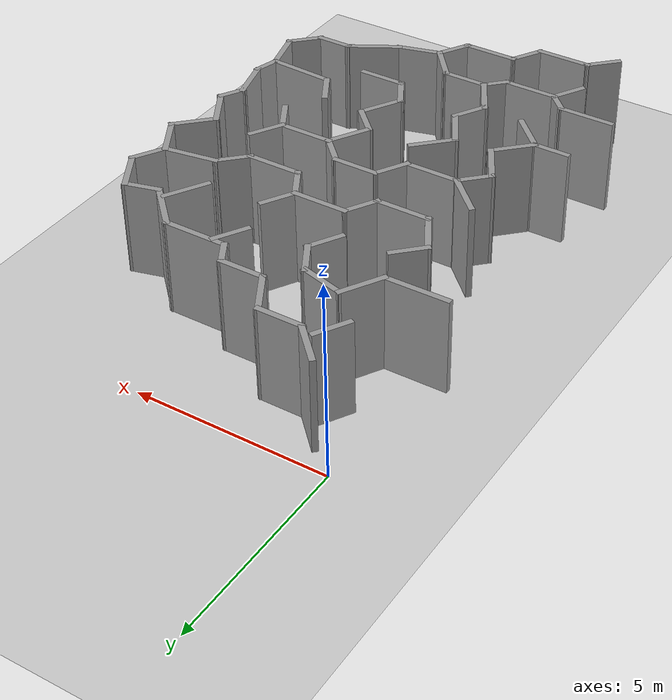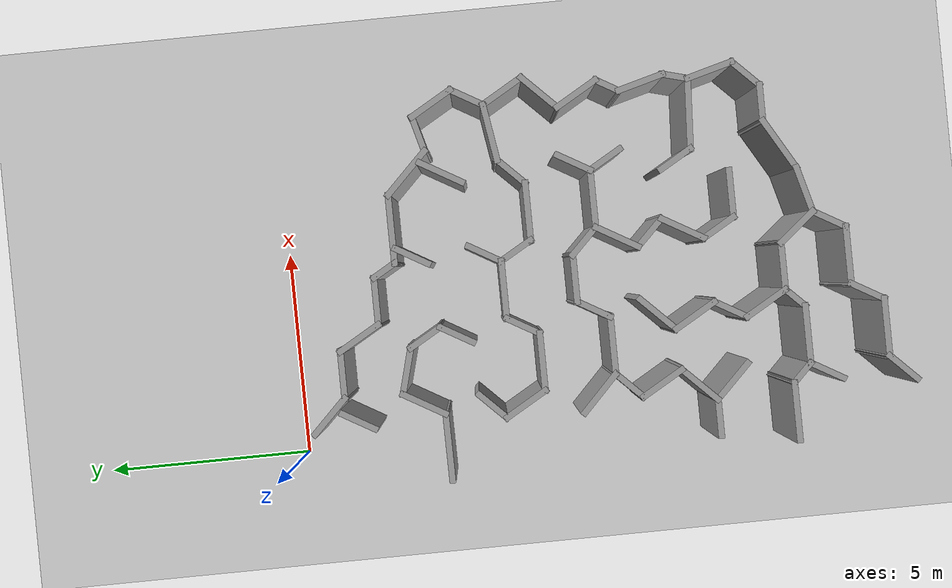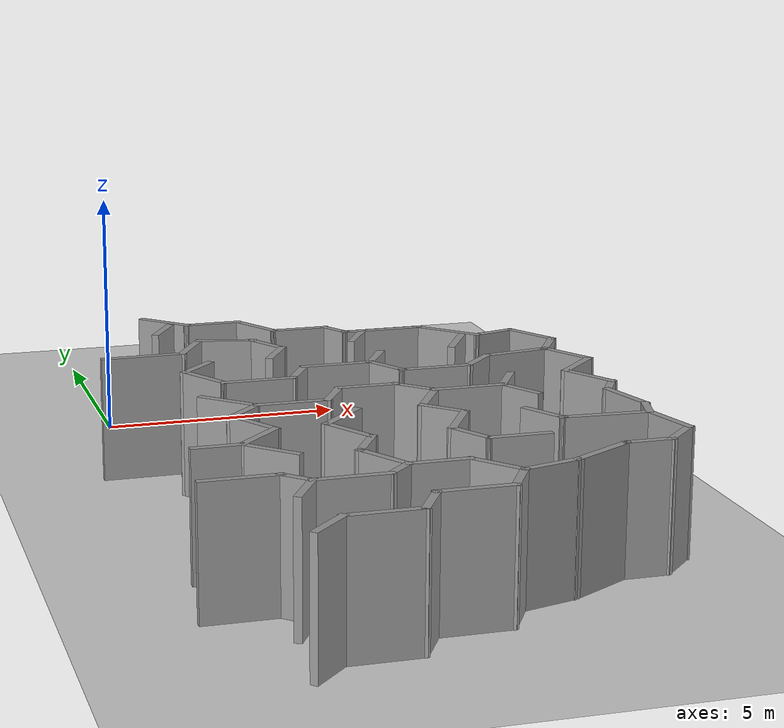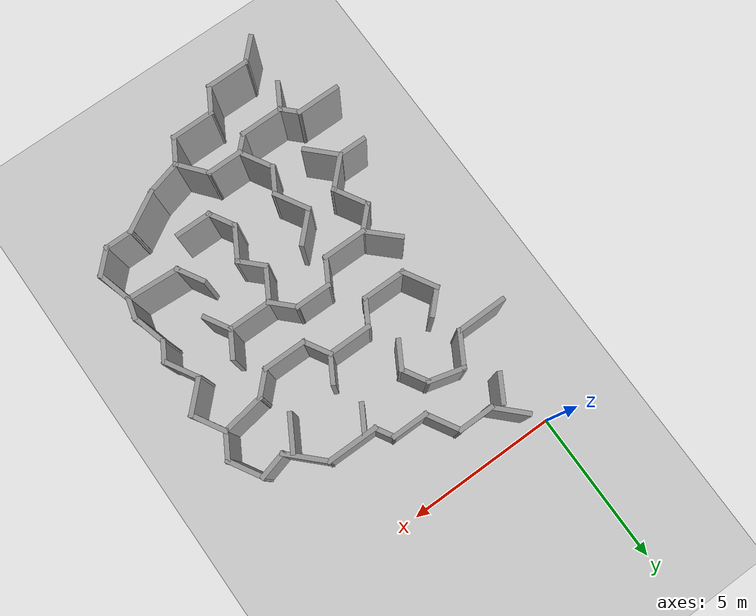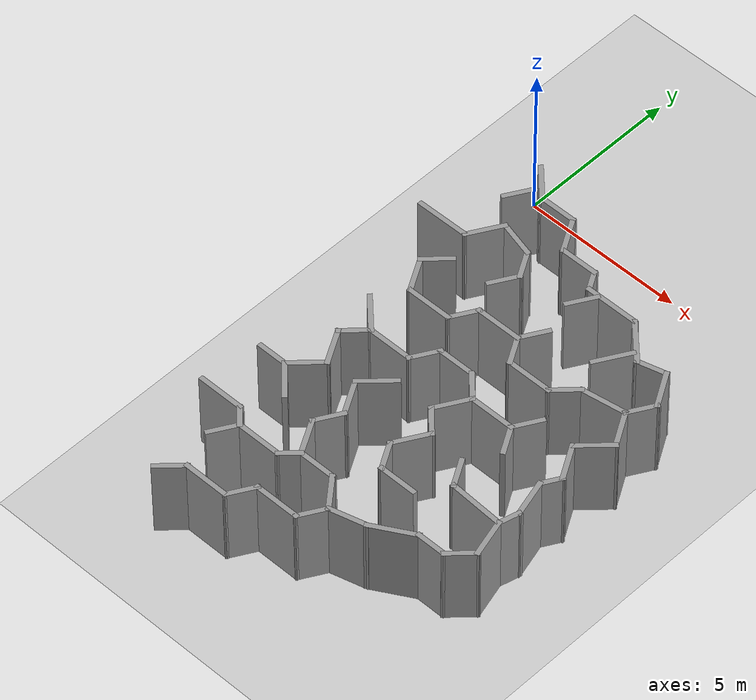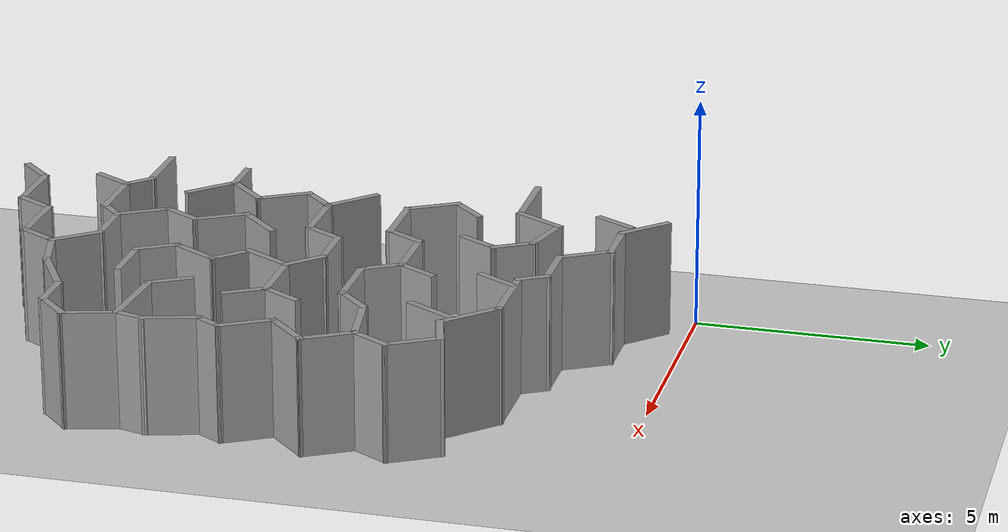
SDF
<sdf version="1.7">
 <world name="default">
  <model name="ground_plane">
   <static>1</static>
   <link name="link">
    <collision name="collision">
     <geometry><plane><normal>0 0 1</normal><size>100 100</size></plane></geometry>
     <surface><friction><ode><mu>100</mu><mu2>50</mu2></ode></friction></surface>
    </collision>
    <visual name="visual">
     <cast_shadows>0</cast_shadows>
     <geometry><plane><normal>0 0 1</normal><size>100 100</size></plane></geometry>
     <material>
      <script><uri>file://media/materials/scripts/gazebo.material</uri><name>Gazebo/Grey</name></script>
     </material>
    </visual>
   </link>
  </model>
  <model name="Maze">
   <pose>0.084887 -7.59379 0 0 -0 0</pose>
   <link name="Wall_110">
    <collision name="Wall_110_Collision">
     <geometry><box><size>1.5 0.15 2.5</size></box></geometry>
     <pose>0 0 1.25 0 -0 0</pose>
    </collision>
    <visual name="Wall_110_Visual">
     <pose>0 0 1.25 0 -0 0</pose>
     <geometry><box><size>1.5 0.15 2.5</size></box></geometry>
     <material>
      <script><uri>file://media/materials/scripts/gazebo.material</uri><name>Gazebo/Grey</name></script>
      <ambient>1 1 1 1</ambient>
     </material>
     <meta><layer>0</layer></meta>
    </visual>
    <pose>0.05253 -4.26643 0 0 -0 0</pose>
   </link>
   <link name="Wall_111">
    <collision name="Wall_111_Collision">
     <geometry><box><size>0.75 0.15 2.5</size></box></geometry>
     <pose>0 0 1.25 0 -0 0</pose>
    </collision>
    <visual name="Wall_111_Visual">
     <pose>0 0 1.25 0 -0 0</pose>
     <geometry><box><size>0.75 0.15 2.5</size></box></geometry>
     <material>
      <script><uri>file://media/materials/scripts/gazebo.material</uri><name>Gazebo/Grey</name></script>
      <ambient>1 1 1 1</ambient>
     </material>
     <meta><layer>0</layer></meta>
    </visual>
    <pose>0.939662 -4.47856 0 0 -0 -0.785398</pose>
   </link>
   <link name="Wall_112">
    <collision name="Wall_112_Collision">
     <geometry><box><size>1 0.15 2.5</size></box></geometry>
     <pose>0 0 1.25 0 -0 0</pose>
    </collision>
    <visual name="Wall_112_Visual">
     <pose>0 0 1.25 0 -0 0</pose>
     <geometry><box><size>1 0.15 2.5</size></box></geometry>
     <material>
      <script><uri>file://media/materials/scripts/gazebo.material</uri><name>Gazebo/Grey</name></script>
      <ambient>1 1 1 1</ambient>
     </material>
     <meta><layer>0</layer></meta>
    </visual>
    <pose>0.939294 -5.05876 0 0 -0 -2.0944</pose>
   </link>
   <link name="Wall_114">
    <collision name="Wall_114_Collision">
     <geometry><box><size>1.5 0.15 2.5</size></box></geometry>
     <pose>0 0 1.25 0 -0 0</pose>
    </collision>
    <visual name="Wall_114_Visual">
     <pose>0 0 1.25 0 -0 0</pose>
     <geometry><box><size>1.5 0.15 2.5</size></box></geometry>
     <material>
      <script><uri>file://media/materials/scripts/gazebo.material</uri><name>Gazebo/Grey</name></script>
      <ambient>1 1 1 1</ambient>
     </material>
     <meta><layer>0</layer></meta>
    </visual>
    <pose>1.82679 -4.69069 0 0 -0 0</pose>
   </link>
   <link name="Wall_115">
    <collision name="Wall_115_Collision">
     <geometry><box><size>0.75 0.15 2.5</size></box></geometry>
     <pose>0 0 1.25 0 -0 0</pose>
    </collision>
    <visual name="Wall_115_Visual">
     <pose>0 0 1.25 0 -0 0</pose>
     <geometry><box><size>0.75 0.15 2.5</size></box></geometry>
     <material>
      <script><uri>file://media/materials/scripts/gazebo.material</uri><name>Gazebo/Grey</name></script>
      <ambient>1 1 1 1</ambient>
     </material>
     <meta><layer>0</layer></meta>
    </visual>
    <pose>2.71393 -4.47856 0 0 -0 0.785398</pose>
   </link>
   <link name="Wall_116">
    <collision name="Wall_116_Collision">
     <geometry><box><size>1.25 0.15 2.5</size></box></geometry>
     <pose>0 0 1.25 0 -0 0</pose>
    </collision>
    <visual name="Wall_116_Visual">
     <pose>0 0 1.25 0 -0 0</pose>
     <geometry><box><size>1.25 0.15 2.5</size></box></geometry>
     <material>
      <script><uri>file://media/materials/scripts/gazebo.material</uri><name>Gazebo/Grey</name></script>
      <ambient>1 1 1 1</ambient>
     </material>
     <meta><layer>0</layer></meta>
    </visual>
    <pose>2.65106 -3.79012 0 0 -0 2.0944</pose>
   </link>
   <link name="Wall_117">
    <collision name="Wall_117_Collision">
     <geometry><box><size>1 0.15 2.5</size></box></geometry>
     <pose>0 0 1.25 0 -0 0</pose>
    </collision>
    <visual name="Wall_117_Visual">
     <pose>0 0 1.25 0 -0 0</pose>
     <geometry><box><size>1 0.15 2.5</size></box></geometry>
     <material>
      <script><uri>file://media/materials/scripts/gazebo.material</uri><name>Gazebo/Grey</name></script>
      <ambient>1 1 1 1</ambient>
     </material>
     <meta><layer>0</layer></meta>
    </visual>
    <pose>2.58856 -2.94574 0 0 -0 1.0472</pose>
   </link>
   <link name="Wall_118">
    <collision name="Wall_118_Collision">
     <geometry><box><size>1.25 0.15 2.5</size></box></geometry>
     <pose>0 0 1.25 0 -0 0</pose>
    </collision>
    <visual name="Wall_118_Visual">
     <pose>0 0 1.25 0 -0 0</pose>
     <geometry><box><size>1.25 0.15 2.5</size></box></geometry>
     <material>
      <script><uri>file://media/materials/scripts/gazebo.material</uri><name>Gazebo/Grey</name></script>
      <ambient>1 1 1 1</ambient>
     </material>
     <meta><layer>0</layer></meta>
    </visual>
    <pose>2.52606 -2.10137 0 0 -0 2.0944</pose>
   </link>
   <link name="Wall_119">
    <collision name="Wall_119_Collision">
     <geometry><box><size>1.25 0.15 2.5</size></box></geometry>
     <pose>0 0 1.25 0 -0 0</pose>
    </collision>
    <visual name="Wall_119_Visual">
     <pose>0 0 1.25 0 -0 0</pose>
     <geometry><box><size>1.25 0.15 2.5</size></box></geometry>
     <material>
      <script><uri>file://media/materials/scripts/gazebo.material</uri><name>Gazebo/Grey</name></script>
      <ambient>1 1 1 1</ambient>
     </material>
     <meta><layer>0</layer></meta>
    </visual>
    <pose>2.63997 -1.23615 0 0 -0 0.785398</pose>
   </link>
   <link name="Wall_121">
    <collision name="Wall_121_Collision">
     <geometry><box><size>1.25 0.15 2.5</size></box></geometry>
     <pose>0 0 1.25 0 -0 0</pose>
    </collision>
    <visual name="Wall_121_Visual">
     <pose>0 0 1.25 0 -0 0</pose>
     <geometry><box><size>1.25 0.15 2.5</size></box></geometry>
     <material>
      <script><uri>file://media/materials/scripts/gazebo.material</uri><name>Gazebo/Grey</name></script>
      <ambient>1 1 1 1</ambient>
     </material>
     <meta><layer>0</layer></meta>
    </visual>
    <pose>3.47606 -4.26643 0 0 -0 0</pose>
   </link>
   <link name="Wall_122">
    <collision name="Wall_122_Collision">
     <geometry><box><size>1.2022 0.15 2.5</size></box></geometry>
     <pose>0 0 1.25 0 -0 0</pose>
    </collision>
    <visual name="Wall_122_Visual">
     <pose>0 0 1.25 0 -0 0</pose>
     <geometry><box><size>1.2022 0.15 2.5</size></box></geometry>
     <material>
      <script><uri>file://media/materials/scripts/gazebo.material</uri><name>Gazebo/Grey</name></script>
      <ambient>1 1 1 1</ambient>
     </material>
     <meta><layer>0</layer></meta>
    </visual>
    <pose>4.3589 -4.67385 0 0 -0 -0.885802</pose>
   </link>
   <link name="Wall_124">
    <collision name="Wall_124_Collision">
     <geometry><box><size>1 0.15 2.5</size></box></geometry>
     <pose>0 0 1.25 0 -0 0</pose>
    </collision>
    <visual name="Wall_124_Visual">
     <pose>0 0 1.25 0 -0 0</pose>
     <geometry><box><size>1 0.15 2.5</size></box></geometry>
     <material>
      <script><uri>file://media/materials/scripts/gazebo.material</uri><name>Gazebo/Grey</name></script>
      <ambient>1 1 1 1</ambient>
     </material>
     <meta><layer>0</layer></meta>
    </visual>
    <pose>0.864304 2.83096 0 0 -0 -2.35619</pose>
   </link>
   <link name="Wall_125">
    <collision name="Wall_125_Collision">
     <geometry><box><size>1.25 0.15 2.5</size></box></geometry>
     <pose>0 0 1.25 0 -0 0</pose>
    </collision>
    <visual name="Wall_125_Visual">
     <pose>0 0 1.25 0 -0 0</pose>
     <geometry><box><size>1.25 0.15 2.5</size></box></geometry>
     <material>
      <script><uri>file://media/materials/scripts/gazebo.material</uri><name>Gazebo/Grey</name></script>
      <ambient>1 1 1 1</ambient>
     </material>
     <meta><layer>0</layer></meta>
    </visual>
    <pose>0.838784 2.05413 0 0 -0 -1.0472</pose>
   </link>
   <link name="Wall_126">
    <collision name="Wall_126_Collision">
     <geometry><box><size>1.5 0.15 2.5</size></box></geometry>
     <pose>0 0 1.25 0 -0 0</pose>
    </collision>
    <visual name="Wall_126_Visual">
     <pose>0 0 1.25 0 -0 0</pose>
     <geometry><box><size>1.5 0.15 2.5</size></box></geometry>
     <material>
      <script><uri>file://media/materials/scripts/gazebo.material</uri><name>Gazebo/Grey</name></script>
      <ambient>1 1 1 1</ambient>
     </material>
     <meta><layer>0</layer></meta>
    </visual>
    <pose>1.78878 1.57782 0 0 -0 0</pose>
   </link>
   <link name="Wall_127">
    <collision name="Wall_127_Collision">
     <geometry><box><size>1 0.15 2.5</size></box></geometry>
     <pose>0 0 1.25 0 -0 0</pose>
    </collision>
    <visual name="Wall_127_Visual">
     <pose>0 0 1.25 0 -0 0</pose>
     <geometry><box><size>1 0.15 2.5</size></box></geometry>
     <material>
      <script><uri>file://media/materials/scripts/gazebo.material</uri><name>Gazebo/Grey</name></script>
      <ambient>1 1 1 1</ambient>
     </material>
     <meta><layer>0</layer></meta>
    </visual>
    <pose>2.67628 1.94588 0 0 -0 1.0472</pose>
   </link>
   <link name="Wall_128">
    <collision name="Wall_128_Collision">
     <geometry><box><size>1.5 0.15 2.5</size></box></geometry>
     <pose>0 0 1.25 0 -0 0</pose>
    </collision>
    <visual name="Wall_128_Visual">
     <pose>0 0 1.25 0 -0 0</pose>
     <geometry><box><size>1.5 0.15 2.5</size></box></geometry>
     <material>
      <script><uri>file://media/materials/scripts/gazebo.material</uri><name>Gazebo/Grey</name></script>
      <ambient>1 1 1 1</ambient>
     </material>
     <meta><layer>0</layer></meta>
    </visual>
    <pose>3.56378 2.31394 0 0 -0 0</pose>
   </link>
   <link name="Wall_129">
    <collision name="Wall_129_Collision">
     <geometry><box><size>1 0.15 2.5</size></box></geometry>
     <pose>0 0 1.25 0 -0 0</pose>
    </collision>
    <visual name="Wall_129_Visual">
     <pose>0 0 1.25 0 -0 0</pose>
     <geometry><box><size>1 0.15 2.5</size></box></geometry>
     <material>
      <script><uri>file://media/materials/scripts/gazebo.material</uri><name>Gazebo/Grey</name></script>
      <ambient>1 1 1 1</ambient>
     </material>
     <meta><layer>0</layer></meta>
    </visual>
    <pose>4.45128 2.682 0 0 -0 1.0472</pose>
   </link>
   <link name="Wall_131">
    <collision name="Wall_131_Collision">
     <geometry><box><size>1 0.15 2.5</size></box></geometry>
     <pose>0 0 1.25 0 -0 0</pose>
    </collision>
    <visual name="Wall_131_Visual">
     <pose>0 0 1.25 0 -0 0</pose>
     <geometry><box><size>1 0.15 2.5</size></box></geometry>
     <material>
      <script><uri>file://media/materials/scripts/gazebo.material</uri><name>Gazebo/Grey</name></script>
      <ambient>1 1 1 1</ambient>
     </material>
     <meta><layer>0</layer></meta>
    </visual>
    <pose>4.45128 1.94588 0 0 -0 -1.0472</pose>
   </link>
   <link name="Wall_132">
    <collision name="Wall_132_Collision">
     <geometry><box><size>1.5 0.15 2.5</size></box></geometry>
     <pose>0 0 1.25 0 -0 0</pose>
    </collision>
    <visual name="Wall_132_Visual">
     <pose>0 0 1.25 0 -0 0</pose>
     <geometry><box><size>1.5 0.15 2.5</size></box></geometry>
     <material>
      <script><uri>file://media/materials/scripts/gazebo.material</uri><name>Gazebo/Grey</name></script>
      <ambient>1 1 1 1</ambient>
     </material>
     <meta><layer>0</layer></meta>
    </visual>
    <pose>5.33878 1.57782 0 0 -0 0</pose>
   </link>
   <link name="Wall_133">
    <collision name="Wall_133_Collision">
     <geometry><box><size>1 0.15 2.5</size></box></geometry>
     <pose>0 0 1.25 0 -0 0</pose>
    </collision>
    <visual name="Wall_133_Visual">
     <pose>0 0 1.25 0 -0 0</pose>
     <geometry><box><size>1 0.15 2.5</size></box></geometry>
     <material>
      <script><uri>file://media/materials/scripts/gazebo.material</uri><name>Gazebo/Grey</name></script>
      <ambient>1 1 1 1</ambient>
     </material>
     <meta><layer>0</layer></meta>
    </visual>
    <pose>6.3143 1.87834 0 0 -0 0.785398</pose>
   </link>
   <link name="Wall_134">
    <collision name="Wall_134_Collision">
     <geometry><box><size>1.48955 0.15 2.5</size></box></geometry>
     <pose>0 0 1.25 0 -0 0</pose>
    </collision>
    <visual name="Wall_134_Visual">
     <pose>0 0 1.25 0 -0 0</pose>
     <geometry><box><size>1.48955 0.15 2.5</size></box></geometry>
     <material>
      <script><uri>file://media/materials/scripts/gazebo.material</uri><name>Gazebo/Grey</name></script>
      <ambient>1 1 1 1</ambient>
     </material>
     <meta><layer>0</layer></meta>
    </visual>
    <pose>7.27649 2.2828 0 0 -0 0.155823</pose>
   </link>
   <link name="Wall_136">
    <collision name="Wall_136_Collision">
     <geometry><box><size>1 0.15 2.5</size></box></geometry>
     <pose>0 0 1.25 0 -0 0</pose>
    </collision>
    <visual name="Wall_136_Visual">
     <pose>0 0 1.25 0 -0 0</pose>
     <geometry><box><size>1 0.15 2.5</size></box></geometry>
     <material>
      <script><uri>file://media/materials/scripts/gazebo.material</uri><name>Gazebo/Grey</name></script>
      <ambient>1 1 1 1</ambient>
     </material>
     <meta><layer>0</layer></meta>
    </visual>
    <pose>6.38032 0.394424 0 0 -0 -2.0944</pose>
   </link>
   <link name="Wall_137">
    <collision name="Wall_137_Collision">
     <geometry><box><size>1 0.15 2.5</size></box></geometry>
     <pose>0 0 1.25 0 -0 0</pose>
    </collision>
    <visual name="Wall_137_Visual">
     <pose>0 0 1.25 0 -0 0</pose>
     <geometry><box><size>1 0.15 2.5</size></box></geometry>
     <material>
      <script><uri>file://media/materials/scripts/gazebo.material</uri><name>Gazebo/Grey</name></script>
      <ambient>1 1 1 1</ambient>
     </material>
     <meta><layer>0</layer></meta>
    </visual>
    <pose>6.38032 -0.341698 0 0 -0 -1.0472</pose>
   </link>
   <link name="Wall_139">
    <collision name="Wall_139_Collision">
     <geometry><box><size>1.5 0.15 2.5</size></box></geometry>
     <pose>0 0 1.25 0 -0 0</pose>
    </collision>
    <visual name="Wall_139_Visual">
     <pose>0 0 1.25 0 -0 0</pose>
     <geometry><box><size>1.5 0.15 2.5</size></box></geometry>
     <material>
      <script><uri>file://media/materials/scripts/gazebo.material</uri><name>Gazebo/Grey</name></script>
      <ambient>1 1 1 1</ambient>
     </material>
     <meta><layer>0</layer></meta>
    </visual>
    <pose>5.49282 0.026363 0 0 -0 3.14159</pose>
   </link>
   <link name="Wall_140">
    <collision name="Wall_140_Collision">
     <geometry><box><size>1 0.15 2.5</size></box></geometry>
     <pose>0 0 1.25 0 -0 0</pose>
    </collision>
    <visual name="Wall_140_Visual">
     <pose>0 0 1.25 0 -0 0</pose>
     <geometry><box><size>1 0.15 2.5</size></box></geometry>
     <material>
      <script><uri>file://media/materials/scripts/gazebo.material</uri><name>Gazebo/Grey</name></script>
      <ambient>1 1 1 1</ambient>
     </material>
     <meta><layer>0</layer></meta>
    </visual>
    <pose>4.5173 0.326883 0 0 -0 2.35619</pose>
   </link>
   <link name="Wall_141">
    <collision name="Wall_141_Collision">
     <geometry><box><size>1.25 0.15 2.5</size></box></geometry>
     <pose>0 0 1.25 0 -0 0</pose>
    </collision>
    <visual name="Wall_141_Visual">
     <pose>0 0 1.25 0 -0 0</pose>
     <geometry><box><size>1.25 0.15 2.5</size></box></geometry>
     <material>
      <script><uri>file://media/materials/scripts/gazebo.material</uri><name>Gazebo/Grey</name></script>
      <ambient>1 1 1 1</ambient>
     </material>
     <meta><layer>0</layer></meta>
    </visual>
    <pose>3.66678 0.627404 0 0 -0 3.14159</pose>
   </link>
   <link name="Wall_142">
    <collision name="Wall_142_Collision">
     <geometry><box><size>1 0.15 2.5</size></box></geometry>
     <pose>0 0 1.25 0 -0 0</pose>
    </collision>
    <visual name="Wall_142_Visual">
     <pose>0 0 1.25 0 -0 0</pose>
     <geometry><box><size>1 0.15 2.5</size></box></geometry>
     <material>
      <script><uri>file://media/materials/scripts/gazebo.material</uri><name>Gazebo/Grey</name></script>
      <ambient>1 1 1 1</ambient>
     </material>
     <meta><layer>0</layer></meta>
    </visual>
    <pose>2.90428 0.259343 0 0 -0 -2.0944</pose>
   </link>
   <link name="Wall_143">
    <collision name="Wall_143_Collision">
     <geometry><box><size>1.5 0.15 2.5</size></box></geometry>
     <pose>0 0 1.25 0 -0 0</pose>
    </collision>
    <visual name="Wall_143_Visual">
     <pose>0 0 1.25 0 -0 0</pose>
     <geometry><box><size>1.5 0.15 2.5</size></box></geometry>
     <material>
      <script><uri>file://media/materials/scripts/gazebo.material</uri><name>Gazebo/Grey</name></script>
      <ambient>1 1 1 1</ambient>
     </material>
     <meta><layer>0</layer></meta>
    </visual>
    <pose>2.01678 -0.108718 0 0 -0 3.14159</pose>
   </link>
   <link name="Wall_144">
    <collision name="Wall_144_Collision">
     <geometry><box><size>1 0.15 2.5</size></box></geometry>
     <pose>0 0 1.25 0 -0 0</pose>
    </collision>
    <visual name="Wall_144_Visual">
     <pose>0 0 1.25 0 -0 0</pose>
     <geometry><box><size>1 0.15 2.5</size></box></geometry>
     <material>
      <script><uri>file://media/materials/scripts/gazebo.material</uri><name>Gazebo/Grey</name></script>
      <ambient>1 1 1 1</ambient>
     </material>
     <meta><layer>0</layer></meta>
    </visual>
    <pose>1.04126 -0.409238 0 0 -0 -2.35619</pose>
   </link>
   <link name="Wall_145">
    <collision name="Wall_145_Collision">
     <geometry><box><size>1.25 0.15 2.5</size></box></geometry>
     <pose>0 0 1.25 0 -0 0</pose>
    </collision>
    <visual name="Wall_145_Visual">
     <pose>0 0 1.25 0 -0 0</pose>
     <geometry><box><size>1.25 0.15 2.5</size></box></geometry>
     <material>
      <script><uri>file://media/materials/scripts/gazebo.material</uri><name>Gazebo/Grey</name></script>
      <ambient>1 1 1 1</ambient>
     </material>
     <meta><layer>0</layer></meta>
    </visual>
    <pose>1.01574 -1.18607 0 0 -0 -1.0472</pose>
   </link>
   <link name="Wall_146">
    <collision name="Wall_146_Collision">
     <geometry><box><size>1.25 0.15 2.5</size></box></geometry>
     <pose>0 0 1.25 0 -0 0</pose>
    </collision>
    <visual name="Wall_146_Visual">
     <pose>0 0 1.25 0 -0 0</pose>
     <geometry><box><size>1.25 0.15 2.5</size></box></geometry>
     <material>
      <script><uri>file://media/materials/scripts/gazebo.material</uri><name>Gazebo/Grey</name></script>
      <ambient>1 1 1 1</ambient>
     </material>
     <meta><layer>0</layer></meta>
    </visual>
    <pose>0.901834 -2.0513 0 0 -0 -2.35619</pose>
   </link>
   <link name="Wall_147">
    <collision name="Wall_147_Collision">
     <geometry><box><size>1.25 0.15 2.5</size></box></geometry>
     <pose>0 0 1.25 0 -0 0</pose>
    </collision>
    <visual name="Wall_147_Visual">
     <pose>0 0 1.25 0 -0 0</pose>
     <geometry><box><size>1.25 0.15 2.5</size></box></geometry>
     <material>
      <script><uri>file://media/materials/scripts/gazebo.material</uri><name>Gazebo/Grey</name></script>
      <ambient>1 1 1 1</ambient>
     </material>
     <meta><layer>0</layer></meta>
    </visual>
    <pose>0.901834 -2.82911 0 0 -0 -0.785398</pose>
   </link>
   <link name="Wall_149">
    <collision name="Wall_149_Collision">
     <geometry><box><size>1 0.15 2.5</size></box></geometry>
     <pose>0 0 1.25 0 -0 0</pose>
    </collision>
    <visual name="Wall_149_Visual">
     <pose>0 0 1.25 0 -0 0</pose>
     <geometry><box><size>1 0.15 2.5</size></box></geometry>
     <material>
      <script><uri>file://media/materials/scripts/gazebo.material</uri><name>Gazebo/Grey</name></script>
      <ambient>1 1 1 1</ambient>
     </material>
     <meta><layer>0</layer></meta>
    </visual>
    <pose>0.087925 -2.4402 0 0 -0 3.14159</pose>
   </link>
   <link name="Wall_159">
    <collision name="Wall_159_Collision">
     <geometry><box><size>1.25 0.15 2.5</size></box></geometry>
     <pose>0 0 1.25 0 -0 0</pose>
    </collision>
    <visual name="Wall_159_Visual">
     <pose>0 0 1.25 0 -0 0</pose>
     <geometry><box><size>1.25 0.15 2.5</size></box></geometry>
     <material>
      <script><uri>file://media/materials/scripts/gazebo.material</uri><name>Gazebo/Grey</name></script>
      <ambient>1 1 1 1</ambient>
     </material>
     <meta><layer>0</layer></meta>
    </visual>
    <pose>4.54282 -0.449951 0 0 -0 -2.0944</pose>
   </link>
   <link name="Wall_160">
    <collision name="Wall_160_Collision">
     <geometry><box><size>1 0.15 2.5</size></box></geometry>
     <pose>0 0 1.25 0 -0 0</pose>
    </collision>
    <visual name="Wall_160_Visual">
     <pose>0 0 1.25 0 -0 0</pose>
     <geometry><box><size>1 0.15 2.5</size></box></geometry>
     <material>
      <script><uri>file://media/materials/scripts/gazebo.material</uri><name>Gazebo/Grey</name></script>
      <ambient>1 1 1 1</ambient>
     </material>
     <meta><layer>0</layer></meta>
    </visual>
    <pose>4.56834 -1.22679 0 0 -0 -0.785398</pose>
   </link>
   <link name="Wall_161">
    <collision name="Wall_161_Collision">
     <geometry><box><size>1.25 0.15 2.5</size></box></geometry>
     <pose>0 0 1.25 0 -0 0</pose>
    </collision>
    <visual name="Wall_161_Visual">
     <pose>0 0 1.25 0 -0 0</pose>
     <geometry><box><size>1.25 0.15 2.5</size></box></geometry>
     <material>
      <script><uri>file://media/materials/scripts/gazebo.material</uri><name>Gazebo/Grey</name></script>
      <ambient>1 1 1 1</ambient>
     </material>
     <meta><layer>0</layer></meta>
    </visual>
    <pose>4.59387 -2.00362 0 0 -0 -2.0944</pose>
   </link>
   <link name="Wall_162">
    <collision name="Wall_162_Collision">
     <geometry><box><size>1 0.15 2.5</size></box></geometry>
     <pose>0 0 1.25 0 -0 0</pose>
    </collision>
    <visual name="Wall_162_Visual">
     <pose>0 0 1.25 0 -0 0</pose>
     <geometry><box><size>1 0.15 2.5</size></box></geometry>
     <material>
      <script><uri>file://media/materials/scripts/gazebo.material</uri><name>Gazebo/Grey</name></script>
      <ambient>1 1 1 1</ambient>
     </material>
     <meta><layer>0</layer></meta>
    </visual>
    <pose>4.53137 -2.848 0 0 -0 -1.0472</pose>
   </link>
   <link name="Wall_163">
    <collision name="Wall_163_Collision">
     <geometry><box><size>1.25 0.15 2.5</size></box></geometry>
     <pose>0 0 1.25 0 -0 0</pose>
    </collision>
    <visual name="Wall_163_Visual">
     <pose>0 0 1.25 0 -0 0</pose>
     <geometry><box><size>1.25 0.15 2.5</size></box></geometry>
     <material>
      <script><uri>file://media/materials/scripts/gazebo.material</uri><name>Gazebo/Grey</name></script>
      <ambient>1 1 1 1</ambient>
     </material>
     <meta><layer>0</layer></meta>
    </visual>
    <pose>5.29387 -3.21605 0 0 -0 0</pose>
   </link>
   <link name="Wall_165">
    <collision name="Wall_165_Collision">
     <geometry><box><size>1 0.15 2.5</size></box></geometry>
     <pose>0 0 1.25 0 -0 0</pose>
    </collision>
    <visual name="Wall_165_Visual">
     <pose>0 0 1.25 0 -0 0</pose>
     <geometry><box><size>1 0.15 2.5</size></box></geometry>
     <material>
      <script><uri>file://media/materials/scripts/gazebo.material</uri><name>Gazebo/Grey</name></script>
      <ambient>1 1 1 1</ambient>
     </material>
     <meta><layer>0</layer></meta>
    </visual>
    <pose>6.23032 -1.99758 0 0 -0 -1.0472</pose>
   </link>
   <link name="Wall_166">
    <collision name="Wall_166_Collision">
     <geometry><box><size>1.79951 0.15 2.5</size></box></geometry>
     <pose>0 0 1.25 0 -0 0</pose>
    </collision>
    <visual name="Wall_166_Visual">
     <pose>0 0 1.25 0 -0 0</pose>
     <geometry><box><size>1.79951 0.15 2.5</size></box></geometry>
     <material>
      <script><uri>file://media/materials/scripts/gazebo.material</uri><name>Gazebo/Grey</name></script>
      <ambient>1 1 1 1</ambient>
     </material>
     <meta><layer>0</layer></meta>
    </visual>
    <pose>7.26628 -2.41183 0 0 -0 -0.056033</pose>
   </link>
   <link name="Wall_168">
    <collision name="Wall_168_Collision">
     <geometry><box><size>1 0.15 2.5</size></box></geometry>
     <pose>0 0 1.25 0 -0 0</pose>
    </collision>
    <visual name="Wall_168_Visual">
     <pose>0 0 1.25 0 -0 0</pose>
     <geometry><box><size>1 0.15 2.5</size></box></geometry>
     <material>
      <script><uri>file://media/materials/scripts/gazebo.material</uri><name>Gazebo/Grey</name></script>
      <ambient>1 1 1 1</ambient>
     </material>
     <meta><layer>0</layer></meta>
    </visual>
    <pose>4.56332 4.39642 0 0 -0 -2.0944</pose>
   </link>
   <link name="Wall_170">
    <collision name="Wall_170_Collision">
     <geometry><box><size>1.25 0.15 2.5</size></box></geometry>
     <pose>0 0 1.25 0 -0 0</pose>
    </collision>
    <visual name="Wall_170_Visual">
     <pose>0 0 1.25 0 -0 0</pose>
     <geometry><box><size>1.25 0.15 2.5</size></box></geometry>
     <material>
      <script><uri>file://media/materials/scripts/gazebo.material</uri><name>Gazebo/Grey</name></script>
      <ambient>1 1 1 1</ambient>
     </material>
     <meta><layer>0</layer></meta>
    </visual>
    <pose>6.45582 3.52917 0 0 -0 -2.0944</pose>
   </link>
   <link name="Wall_175">
    <collision name="Wall_175_Collision">
     <geometry><box><size>1.31884 0.15 2.5</size></box></geometry>
     <pose>0 0 1.25 0 -0 0</pose>
    </collision>
    <visual name="Wall_175_Visual">
     <pose>0 0 1.25 0 -0 0</pose>
     <geometry><box><size>1.31884 0.15 2.5</size></box></geometry>
     <material>
      <script><uri>file://media/materials/scripts/gazebo.material</uri><name>Gazebo/Grey</name></script>
      <ambient>1 1 1 1</ambient>
     </material>
     <meta><layer>0</layer></meta>
    </visual>
    <pose>0.920972 0.296822 0 0 -0 -0.76692</pose>
   </link>
   <link name="Wall_32">
    <collision name="Wall_32_Collision">
     <geometry><box><size>1 0.15 2.5</size></box></geometry>
     <pose>0 0 1.25 0 -0 0</pose>
    </collision>
    <visual name="Wall_32_Visual">
     <pose>0 0 1.25 0 -0 0</pose>
     <geometry><box><size>1 0.15 2.5</size></box></geometry>
     <material>
      <script><uri>file://media/materials/scripts/gazebo.material</uri><name>Gazebo/Grey</name></script>
      <ambient>1 1 1 1</ambient>
     </material>
     <meta><layer>0</layer></meta>
    </visual>
    <pose>0.841229 -6.85404 0 0 -0 0.785398</pose>
   </link>
   <link name="Wall_33">
    <collision name="Wall_33_Collision">
     <geometry><box><size>1.5 0.15 2.5</size></box></geometry>
     <pose>0 0 1.25 0 -0 0</pose>
    </collision>
    <visual name="Wall_33_Visual">
     <pose>0 0 1.25 0 -0 0</pose>
     <geometry><box><size>1.5 0.15 2.5</size></box></geometry>
     <material>
      <script><uri>file://media/materials/scripts/gazebo.material</uri><name>Gazebo/Grey</name></script>
      <ambient>1 1 1 1</ambient>
     </material>
     <meta><layer>0</layer></meta>
    </visual>
    <pose>1.81675 -6.55352 0 0 -0 0</pose>
   </link>
   <link name="Wall_34">
    <collision name="Wall_34_Collision">
     <geometry><box><size>1 0.15 2.5</size></box></geometry>
     <pose>0 0 1.25 0 -0 0</pose>
    </collision>
    <visual name="Wall_34_Visual">
     <pose>0 0 1.25 0 -0 0</pose>
     <geometry><box><size>1 0.15 2.5</size></box></geometry>
     <material>
      <script><uri>file://media/materials/scripts/gazebo.material</uri><name>Gazebo/Grey</name></script>
      <ambient>1 1 1 1</ambient>
     </material>
     <meta><layer>0</layer></meta>
    </visual>
    <pose>2.70425 -6.18546 0 0 -0 1.0472</pose>
   </link>
   <link name="Wall_35">
    <collision name="Wall_35_Collision">
     <geometry><box><size>1.5 0.15 2.5</size></box></geometry>
     <pose>0 0 1.25 0 -0 0</pose>
    </collision>
    <visual name="Wall_35_Visual">
     <pose>0 0 1.25 0 -0 0</pose>
     <geometry><box><size>1.5 0.15 2.5</size></box></geometry>
     <material>
      <script><uri>file://media/materials/scripts/gazebo.material</uri><name>Gazebo/Grey</name></script>
      <ambient>1 1 1 1</ambient>
     </material>
     <meta><layer>0</layer></meta>
    </visual>
    <pose>3.59175 -5.8174 0 0 -0 0</pose>
   </link>
   <link name="Wall_36">
    <collision name="Wall_36_Collision">
     <geometry><box><size>1 0.15 2.5</size></box></geometry>
     <pose>0 0 1.25 0 -0 0</pose>
    </collision>
    <visual name="Wall_36_Visual">
     <pose>0 0 1.25 0 -0 0</pose>
     <geometry><box><size>1 0.15 2.5</size></box></geometry>
     <material>
      <script><uri>file://media/materials/scripts/gazebo.material</uri><name>Gazebo/Grey</name></script>
      <ambient>1 1 1 1</ambient>
     </material>
     <meta><layer>0</layer></meta>
    </visual>
    <pose>4.47925 -5.44934 0 0 -0 1.0472</pose>
   </link>
   <link name="Wall_37">
    <collision name="Wall_37_Collision">
     <geometry><box><size>1.25 0.15 2.5</size></box></geometry>
     <pose>0 0 1.25 0 -0 0</pose>
    </collision>
    <visual name="Wall_37_Visual">
     <pose>0 0 1.25 0 -0 0</pose>
     <geometry><box><size>1.25 0.15 2.5</size></box></geometry>
     <material>
      <script><uri>file://media/materials/scripts/gazebo.material</uri><name>Gazebo/Grey</name></script>
      <ambient>1 1 1 1</ambient>
     </material>
     <meta><layer>0</layer></meta>
    </visual>
    <pose>5.22301 -4.93893 0 0 -0 0.261799</pose>
   </link>
   <link name="Wall_38">
    <collision name="Wall_38_Collision">
     <geometry><box><size>1.5 0.15 2.5</size></box></geometry>
     <pose>0 0 1.25 0 -0 0</pose>
    </collision>
    <visual name="Wall_38_Visual">
     <pose>0 0 1.25 0 -0 0</pose>
     <geometry><box><size>1.5 0.15 2.5</size></box></geometry>
     <material>
      <script><uri>file://media/materials/scripts/gazebo.material</uri><name>Gazebo/Grey</name></script>
      <ambient>1 1 1 1</ambient>
     </material>
     <meta><layer>0</layer></meta>
    </visual>
    <pose>6.33884 -4.45908 0 0 -0 0.523599</pose>
   </link>
   <link name="Wall_39">
    <collision name="Wall_39_Collision">
     <geometry><box><size>1 0.15 2.5</size></box></geometry>
     <pose>0 0 1.25 0 -0 0</pose>
    </collision>
    <visual name="Wall_39_Visual">
     <pose>0 0 1.25 0 -0 0</pose>
     <geometry><box><size>1 0.15 2.5</size></box></geometry>
     <material>
      <script><uri>file://media/materials/scripts/gazebo.material</uri><name>Gazebo/Grey</name></script>
      <ambient>1 1 1 1</ambient>
     </material>
     <meta><layer>0</layer></meta>
    </visual>
    <pose>7.3484 -4.12157 0 0 -0 0</pose>
   </link>
   <link name="Wall_40">
    <collision name="Wall_40_Collision">
     <geometry><box><size>1 0.15 2.5</size></box></geometry>
     <pose>0 0 1.25 0 -0 0</pose>
    </collision>
    <visual name="Wall_40_Visual">
     <pose>0 0 1.25 0 -0 0</pose>
     <geometry><box><size>1 0.15 2.5</size></box></geometry>
     <material>
      <script><uri>file://media/materials/scripts/gazebo.material</uri><name>Gazebo/Grey</name></script>
      <ambient>1 1 1 1</ambient>
     </material>
     <meta><layer>0</layer></meta>
    </visual>
    <pose>8.07392 -3.82105 0 0 -0 0.785398</pose>
   </link>
   <link name="Wall_41">
    <collision name="Wall_41_Collision">
     <geometry><box><size>1.25 0.15 2.5</size></box></geometry>
     <pose>0 0 1.25 0 -0 0</pose>
    </collision>
    <visual name="Wall_41_Visual">
     <pose>0 0 1.25 0 -0 0</pose>
     <geometry><box><size>1.25 0.15 2.5</size></box></geometry>
     <material>
      <script><uri>file://media/materials/scripts/gazebo.material</uri><name>Gazebo/Grey</name></script>
      <ambient>1 1 1 1</ambient>
     </material>
     <meta><layer>0</layer></meta>
    </visual>
    <pose>8.23209 -2.98928 0 0 -0 1.8326</pose>
   </link>
   <link name="Wall_42">
    <collision name="Wall_42_Collision">
     <geometry><box><size>0.75 0.15 2.5</size></box></geometry>
     <pose>0 0 1.25 0 -0 0</pose>
    </collision>
    <visual name="Wall_42_Visual">
     <pose>0 0 1.25 0 -0 0</pose>
     <geometry><box><size>0.75 0.15 2.5</size></box></geometry>
     <material>
      <script><uri>file://media/materials/scripts/gazebo.material</uri><name>Gazebo/Grey</name></script>
      <ambient>1 1 1 1</ambient>
     </material>
     <meta><layer>0</layer></meta>
    </visual>
    <pose>8.16739 -2.16824 0 0 -0 1.309</pose>
   </link>
   <link name="Wall_43">
    <collision name="Wall_43_Collision">
     <geometry><box><size>1.25 0.15 2.5</size></box></geometry>
     <pose>0 0 1.25 0 -0 0</pose>
    </collision>
    <visual name="Wall_43_Visual">
     <pose>0 0 1.25 0 -0 0</pose>
     <geometry><box><size>1.25 0.15 2.5</size></box></geometry>
     <material>
      <script><uri>file://media/materials/scripts/gazebo.material</uri><name>Gazebo/Grey</name></script>
      <ambient>1 1 1 1</ambient>
     </material>
     <meta><layer>0</layer></meta>
    </visual>
    <pose>8.10268 -1.3472 0 0 -0 1.8326</pose>
   </link>
   <link name="Wall_44">
    <collision name="Wall_44_Collision">
     <geometry><box><size>0.75 0.15 2.5</size></box></geometry>
     <pose>0 0 1.25 0 -0 0</pose>
    </collision>
    <visual name="Wall_44_Visual">
     <pose>0 0 1.25 0 -0 0</pose>
     <geometry><box><size>0.75 0.15 2.5</size></box></geometry>
     <material>
      <script><uri>file://media/materials/scripts/gazebo.material</uri><name>Gazebo/Grey</name></script>
      <ambient>1 1 1 1</ambient>
     </material>
     <meta><layer>0</layer></meta>
    </visual>
    <pose>8.11033 -0.556134 0 0 -0 1.0472</pose>
   </link>
   <link name="Wall_45">
    <collision name="Wall_45_Collision">
     <geometry><box><size>1.25 0.15 2.5</size></box></geometry>
     <pose>0 0 1.25 0 -0 0</pose>
    </collision>
    <visual name="Wall_45_Visual">
     <pose>0 0 1.25 0 -0 0</pose>
     <geometry><box><size>1.25 0.15 2.5</size></box></geometry>
     <material>
      <script><uri>file://media/materials/scripts/gazebo.material</uri><name>Gazebo/Grey</name></script>
      <ambient>1 1 1 1</ambient>
     </material>
     <meta><layer>0</layer></meta>
    </visual>
    <pose>7.98533 0.179987 0 0 -0 2.0944</pose>
   </link>
   <link name="Wall_46">
    <collision name="Wall_46_Collision">
     <geometry><box><size>1.25 0.15 2.5</size></box></geometry>
     <pose>0 0 1.25 0 -0 0</pose>
    </collision>
    <visual name="Wall_46_Visual">
     <pose>0 0 1.25 0 -0 0</pose>
     <geometry><box><size>1.25 0.15 2.5</size></box></geometry>
     <material>
      <script><uri>file://media/materials/scripts/gazebo.material</uri><name>Gazebo/Grey</name></script>
      <ambient>1 1 1 1</ambient>
     </material>
     <meta><layer>0</layer></meta>
    </visual>
    <pose>8.09924 1.04521 0 0 -0 0.785398</pose>
   </link>
   <link name="Wall_47">
    <collision name="Wall_47_Collision">
     <geometry><box><size>1.25 0.15 2.5</size></box></geometry>
     <pose>0 0 1.25 0 -0 0</pose>
    </collision>
    <visual name="Wall_47_Visual">
     <pose>0 0 1.25 0 -0 0</pose>
     <geometry><box><size>1.25 0.15 2.5</size></box></geometry>
     <material>
      <script><uri>file://media/materials/scripts/gazebo.material</uri><name>Gazebo/Grey</name></script>
      <ambient>1 1 1 1</ambient>
     </material>
     <meta><layer>0</layer></meta>
    </visual>
    <pose>8.21315 1.91043 0 0 -0 2.0944</pose>
   </link>
   <link name="Wall_48">
    <collision name="Wall_48_Collision">
     <geometry><box><size>1 0.15 2.5</size></box></geometry>
     <pose>0 0 1.25 0 -0 0</pose>
    </collision>
    <visual name="Wall_48_Visual">
     <pose>0 0 1.25 0 -0 0</pose>
     <geometry><box><size>1 0.15 2.5</size></box></geometry>
     <material>
      <script><uri>file://media/materials/scripts/gazebo.material</uri><name>Gazebo/Grey</name></script>
      <ambient>1 1 1 1</ambient>
     </material>
     <meta><layer>0</layer></meta>
    </visual>
    <pose>8.15065 2.75481 0 0 -0 1.0472</pose>
   </link>
   <link name="Wall_49">
    <collision name="Wall_49_Collision">
     <geometry><box><size>1.25 0.15 2.5</size></box></geometry>
     <pose>0 0 1.25 0 -0 0</pose>
    </collision>
    <visual name="Wall_49_Visual">
     <pose>0 0 1.25 0 -0 0</pose>
     <geometry><box><size>1.25 0.15 2.5</size></box></geometry>
     <material>
      <script><uri>file://media/materials/scripts/gazebo.material</uri><name>Gazebo/Grey</name></script>
      <ambient>1 1 1 1</ambient>
     </material>
     <meta><layer>0</layer></meta>
    </visual>
    <pose>8.08815 3.59918 0 0 -0 2.0944</pose>
   </link>
   <link name="Wall_50">
    <collision name="Wall_50_Collision">
     <geometry><box><size>1 0.15 2.5</size></box></geometry>
     <pose>0 0 1.25 0 -0 0</pose>
    </collision>
    <visual name="Wall_50_Visual">
     <pose>0 0 1.25 0 -0 0</pose>
     <geometry><box><size>1 0.15 2.5</size></box></geometry>
     <material>
      <script><uri>file://media/materials/scripts/gazebo.material</uri><name>Gazebo/Grey</name></script>
      <ambient>1 1 1 1</ambient>
     </material>
     <meta><layer>0</layer></meta>
    </visual>
    <pose>7.40263 3.9655 0 0 -0 -2.87979</pose>
   </link>
   <link name="Wall_51">
    <collision name="Wall_51_Collision">
     <geometry><box><size>1.5 0.15 2.5</size></box></geometry>
     <pose>0 0 1.25 0 -0 0</pose>
    </collision>
    <visual name="Wall_51_Visual">
     <pose>0 0 1.25 0 -0 0</pose>
     <geometry><box><size>1.5 0.15 2.5</size></box></geometry>
     <material>
      <script><uri>file://media/materials/scripts/gazebo.material</uri><name>Gazebo/Grey</name></script>
      <ambient>1 1 1 1</ambient>
     </material>
     <meta><layer>0</layer></meta>
    </visual>
    <pose>6.51482 4.3328 0 0 -0 2.35619</pose>
   </link>
   <link name="Wall_52">
    <collision name="Wall_52_Collision">
     <geometry><box><size>1.75 0.15 2.5</size></box></geometry>
     <pose>0 0 1.25 0 -0 0</pose>
    </collision>
    <visual name="Wall_52_Visual">
     <pose>0 0 1.25 0 -0 0</pose>
     <geometry><box><size>1.75 0.15 2.5</size></box></geometry>
     <material>
      <script><uri>file://media/materials/scripts/gazebo.material</uri><name>Gazebo/Grey</name></script>
      <ambient>1 1 1 1</ambient>
     </material>
     <meta><layer>0</layer></meta>
    </visual>
    <pose>5.23752 4.81009 0 0 -0 3.14159</pose>
   </link>
   <link name="Wall_53">
    <collision name="Wall_53_Collision">
     <geometry><box><size>0.75 0.15 2.5</size></box></geometry>
     <pose>0 0 1.25 0 -0 0</pose>
    </collision>
    <visual name="Wall_53_Visual">
     <pose>0 0 1.25 0 -0 0</pose>
     <geometry><box><size>0.75 0.15 2.5</size></box></geometry>
     <material>
      <script><uri>file://media/materials/scripts/gazebo.material</uri><name>Gazebo/Grey</name></script>
      <ambient>1 1 1 1</ambient>
     </material>
     <meta><layer>0</layer></meta>
    </visual>
    <pose>4.28752 5.0699 0 0 -0 2.0944</pose>
   </link>
   <link name="Wall_54">
    <collision name="Wall_54_Collision">
     <geometry><box><size>1.25 0.15 2.5</size></box></geometry>
     <pose>0 0 1.25 0 -0 0</pose>
    </collision>
    <visual name="Wall_54_Visual">
     <pose>0 0 1.25 0 -0 0</pose>
     <geometry><box><size>1.25 0.15 2.5</size></box></geometry>
     <material>
      <script><uri>file://media/materials/scripts/gazebo.material</uri><name>Gazebo/Grey</name></script>
      <ambient>1 1 1 1</ambient>
     </material>
     <meta><layer>0</layer></meta>
    </visual>
    <pose>3.58752 5.32971 0 0 -0 3.14159</pose>
   </link>
   <link name="Wall_55">
    <collision name="Wall_55_Collision">
     <geometry><box><size>1.25 0.15 2.5</size></box></geometry>
     <pose>0 0 1.25 0 -0 0</pose>
    </collision>
    <visual name="Wall_55_Visual">
     <pose>0 0 1.25 0 -0 0</pose>
     <geometry><box><size>1.25 0.15 2.5</size></box></geometry>
     <material>
      <script><uri>file://media/materials/scripts/gazebo.material</uri><name>Gazebo/Grey</name></script>
      <ambient>1 1 1 1</ambient>
     </material>
     <meta><layer>0</layer></meta>
    </visual>
    <pose>2.76252 5.80602 0 0 -0 2.0944</pose>
   </link>
   <link name="Wall_56">
    <collision name="Wall_56_Collision">
     <geometry><box><size>1.25 0.15 2.5</size></box></geometry>
     <pose>0 0 1.25 0 -0 0</pose>
    </collision>
    <visual name="Wall_56_Visual">
     <pose>0 0 1.25 0 -0 0</pose>
     <geometry><box><size>1.25 0.15 2.5</size></box></geometry>
     <material>
      <script><uri>file://media/materials/scripts/gazebo.material</uri><name>Gazebo/Grey</name></script>
      <ambient>1 1 1 1</ambient>
     </material>
     <meta><layer>0</layer></meta>
    </visual>
    <pose>1.93752 6.28234 0 0 -0 3.14159</pose>
   </link>
   <link name="Wall_57">
    <collision name="Wall_57_Collision">
     <geometry><box><size>1.25 0.15 2.5</size></box></geometry>
     <pose>0 0 1.25 0 -0 0</pose>
    </collision>
    <visual name="Wall_57_Visual">
     <pose>0 0 1.25 0 -0 0</pose>
     <geometry><box><size>1.25 0.15 2.5</size></box></geometry>
     <material>
      <script><uri>file://media/materials/scripts/gazebo.material</uri><name>Gazebo/Grey</name></script>
      <ambient>1 1 1 1</ambient>
     </material>
     <meta><layer>0</layer></meta>
    </visual>
    <pose>0.99861 6.67125 0 0 -0 2.35619</pose>
   </link>
   <link name="Wall_59">
    <collision name="Wall_59_Collision">
     <geometry><box><size>1 0.15 2.5</size></box></geometry>
     <pose>0 0 1.25 0 -0 0</pose>
    </collision>
    <visual name="Wall_59_Visual">
     <pose>0 0 1.25 0 -0 0</pose>
     <geometry><box><size>1 0.15 2.5</size></box></geometry>
     <material>
      <script><uri>file://media/materials/scripts/gazebo.material</uri><name>Gazebo/Grey</name></script>
      <ambient>1 1 1 1</ambient>
     </material>
     <meta><layer>0</layer></meta>
    </visual>
    <pose>0.818397 6.00811 0 0 -0 -2.0944</pose>
   </link>
   <link name="Wall_89">
    <collision name="Wall_89_Collision">
     <geometry><box><size>1 0.15 2.5</size></box></geometry>
     <pose>0 0 1.25 0 -0 0</pose>
    </collision>
    <visual name="Wall_89_Visual">
     <pose>0 0 1.25 0 -0 0</pose>
     <geometry><box><size>1 0.15 2.5</size></box></geometry>
     <material>
      <script><uri>file://media/materials/scripts/gazebo.material</uri><name>Gazebo/Grey</name></script>
      <ambient>1 1 1 1</ambient>
     </material>
     <meta><layer>0</layer></meta>
    </visual>
    <pose>2.6234 3.52424 0 0 -0 1.0472</pose>
   </link>
   <link name="Wall_90">
    <collision name="Wall_90_Collision">
     <geometry><box><size>1 0.15 2.5</size></box></geometry>
     <pose>0 0 1.25 0 -0 0</pose>
    </collision>
    <visual name="Wall_90_Visual">
     <pose>0 0 1.25 0 -0 0</pose>
     <geometry><box><size>1 0.15 2.5</size></box></geometry>
     <material>
      <script><uri>file://media/materials/scripts/gazebo.material</uri><name>Gazebo/Grey</name></script>
      <ambient>1 1 1 1</ambient>
     </material>
     <meta><layer>0</layer></meta>
    </visual>
    <pose>2.6234 4.26036 0 0 -0 2.0944</pose>
   </link>
   <link name="Wall_91">
    <collision name="Wall_91_Collision">
     <geometry><box><size>1.25 0.15 2.5</size></box></geometry>
     <pose>0 0 1.25 0 -0 0</pose>
    </collision>
    <visual name="Wall_91_Visual">
     <pose>0 0 1.25 0 -0 0</pose>
     <geometry><box><size>1.25 0.15 2.5</size></box></geometry>
     <material>
      <script><uri>file://media/materials/scripts/gazebo.material</uri><name>Gazebo/Grey</name></script>
      <ambient>1 1 1 1</ambient>
     </material>
     <meta><layer>0</layer></meta>
    </visual>
    <pose>1.87964 4.77077 0 0 -0 2.87979</pose>
   </link>
   <link name="Wall_92">
    <collision name="Wall_92_Collision">
     <geometry><box><size>1.25 0.15 2.5</size></box></geometry>
     <pose>0 0 1.25 0 -0 0</pose>
    </collision>
    <visual name="Wall_92_Visual">
     <pose>0 0 1.25 0 -0 0</pose>
     <geometry><box><size>1.25 0.15 2.5</size></box></geometry>
     <material>
      <script><uri>file://media/materials/scripts/gazebo.material</uri><name>Gazebo/Grey</name></script>
      <ambient>1 1 1 1</ambient>
     </material>
     <meta><layer>0</layer></meta>
    </visual>
    <pose>1.07338 4.4368 0 0 -0 -2.0944</pose>
   </link>
   <link name="Wall_93">
    <collision name="Wall_93_Collision">
     <geometry><box><size>1.71826 0.15 2.5</size></box></geometry>
     <pose>0 0 1.25 0 -0 0</pose>
    </collision>
    <visual name="Wall_93_Visual">
     <pose>0 0 1.25 0 -0 0</pose>
     <geometry><box><size>1.71826 0.15 2.5</size></box></geometry>
     <material>
      <script><uri>file://media/materials/scripts/gazebo.material</uri><name>Gazebo/Grey</name></script>
      <ambient>1 1 1 1</ambient>
     </material>
     <meta><layer>0</layer></meta>
    </visual>
    <pose>0.014272 3.95438 0 0 -0 -3.1338</pose>
   </link>
   <static>1</static>
  </model>
 </world>
</sdf>
